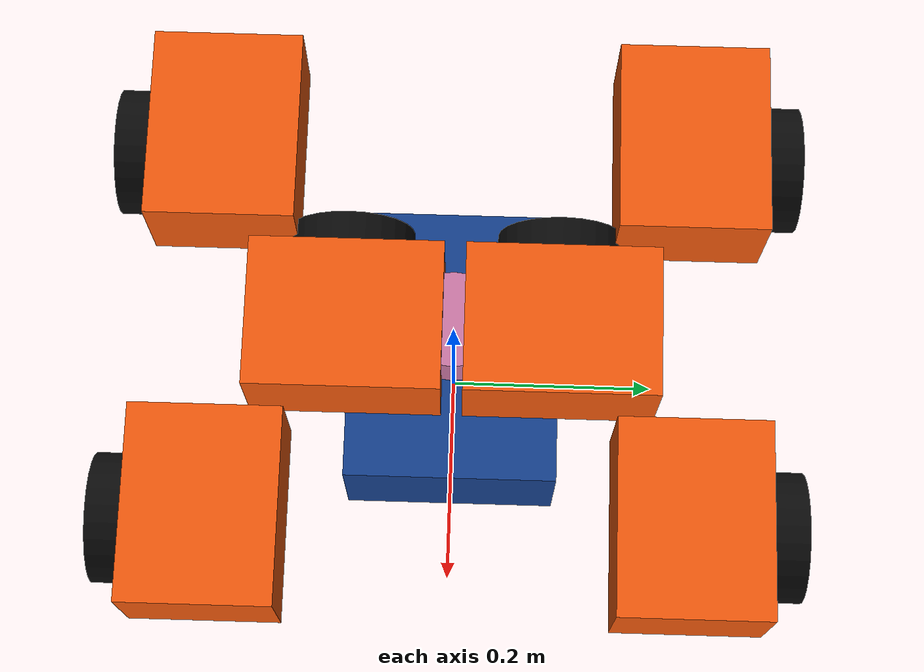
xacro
<?xml version="1.0"?>
<robot xmlns:xacro="http://www.ros.org/wiki/xacro" name="modular_robot">
  <xacro:arg name="use_sim" default="true"/>
  <xacro:property name="pi" value="3.141592653589793"/>

  <xacro:macro name="box_link" params="name size mass xyz">
    <link name="${name}">
      <inertial><origin xyz="${xyz}"/><mass value="${mass}"/>
        <inertia ixx="0.025" ixy="0" ixz="0" iyy="0.035" iyz="0" izz="0.045"/>
      </inertial>
      <visual><origin xyz="${xyz}"/><geometry><box size="${size}"/></geometry>
        <material name="core_blue"><color rgba="0.08 0.25 0.55 1"/></material>
      </visual>
      <collision><origin xyz="${xyz}"/><geometry><box size="${size}"/></geometry></collision>
    </link>
  </xacro:macro>

  <xacro:macro name="drive_pod" params="index x y yaw">
    <link name="pod_${index}_link">
      <inertial><mass value="2.1"/><inertia ixx="0.006" ixy="0" ixz="0" iyy="0.008" iyz="0" izz="0.009"/></inertial>
      <visual><geometry><box size="0.18 0.14 0.10"/></geometry>
        <material name="pod_orange"><color rgba="0.95 0.35 0.05 1"/></material></visual>
      <collision><geometry><box size="0.18 0.14 0.10"/></geometry></collision>
    </link>
    <joint name="pod_${index}_dock" type="fixed">
      <parent link="core/base_link"/><child link="pod_${index}_link"/>
      <origin xyz="${x} ${y} 0.11" rpy="0 0 ${yaw}"/>
    </joint>
    <link name="pod_${index}_wheel">
      <inertial><mass value="0.35"/><inertia ixx="0.0007" ixy="0" ixz="0" iyy="0.0012" iyz="0" izz="0.0007"/></inertial>
      <visual><geometry><cylinder radius="0.06" length="0.035"/></geometry>
        <material name="rubber"><color rgba="0.04 0.04 0.04 1"/></material></visual>
      <collision><geometry><cylinder radius="0.06" length="0.035"/></geometry></collision>
    </link>
    <joint name="pod_${index}_wheel_joint" type="continuous">
      <parent link="pod_${index}_link"/><child link="pod_${index}_wheel"/>
      <origin xyz="0 ${0.0875 if y >= 0 else -0.0875} -0.035" rpy="1.5708 0 0"/>
      <axis xyz="0 0 1"/>
    </joint>
  </xacro:macro>

  <link name="base_footprint"/>
  <joint name="base_footprint_joint" type="fixed">
    <parent link="base_footprint"/><child link="core/base_link"/><origin xyz="0 0 0.09"/>
  </joint>
  <xacro:box_link name="core/base_link" size="0.26 0.20 0.12" mass="5.0" xyz="0 0 0"/>
  <xacro:drive_pod index="0" x="0.18" y="0.22" yaw="0"/>
  <xacro:drive_pod index="1" x="0.18" y="-0.22" yaw="0"/>
  <xacro:drive_pod index="2" x="-0.18" y="0.22" yaw="0"/>
  <xacro:drive_pod index="3" x="-0.18" y="-0.22" yaw="0"/>
  <xacro:drive_pod index="4" x="0" y="0.10" yaw="1.5708"/>
  <xacro:drive_pod index="5" x="0" y="-0.10" yaw="-1.5708"/>

  <link name="core/lidar_link"><visual><geometry><cylinder radius="0.045" length="0.05"/></geometry></visual></link>
  <joint name="lidar_joint" type="fixed"><parent link="core/base_link"/><child link="core/lidar_link"/><origin xyz="0 0 0.12"/></joint>
  <link name="core/imu_link"/>
  <joint name="imu_joint" type="fixed"><parent link="core/base_link"/><child link="core/imu_link"/><origin xyz="0 0 0.04"/></joint>

  <gazebo reference="core/base_link"><material>Gazebo/Blue</material></gazebo>
  <gazebo reference="core/lidar_link">
    <sensor name="lidar" type="gpu_lidar">
      <topic>scan</topic><update_rate>15</update_rate><lidar><scan><horizontal><samples>720</samples><resolution>1</resolution><min_angle>-${pi}</min_angle><max_angle>${pi}</max_angle></horizontal></scan><range><min>0.08</min><max>15.0</max><resolution>0.01</resolution></range><noise><type>gaussian</type><mean>0</mean><stddev>0.006</stddev></noise></lidar><always_on>true</always_on><visualize>true</visualize>
    </sensor>
  </gazebo>
  <gazebo reference="core/imu_link"><sensor name="imu" type="imu"><topic>imu</topic><update_rate>100</update_rate><always_on>true</always_on></sensor></gazebo>
</robot>
